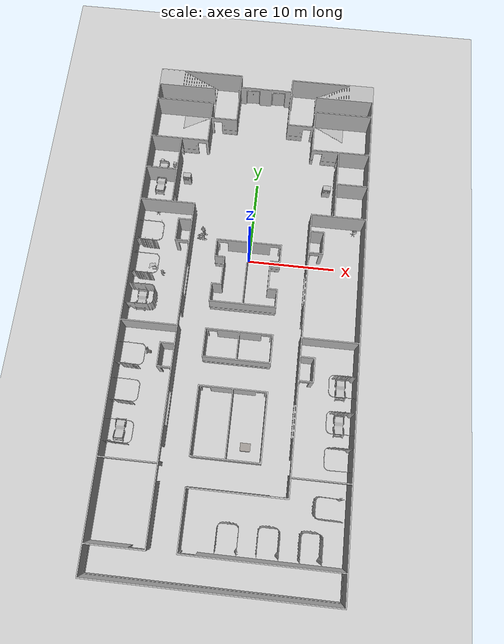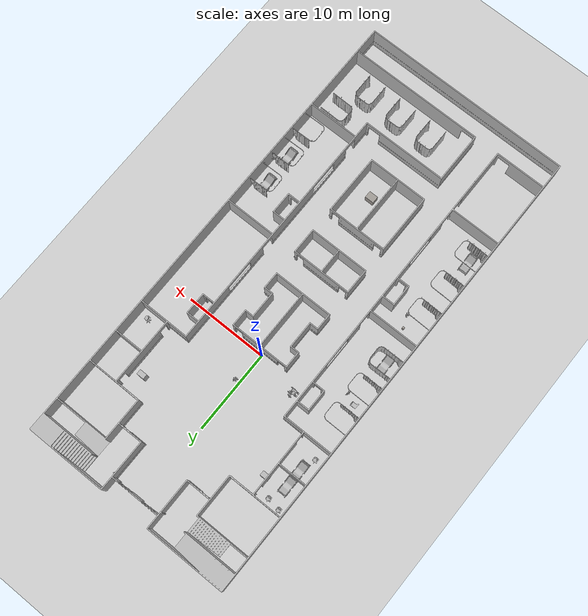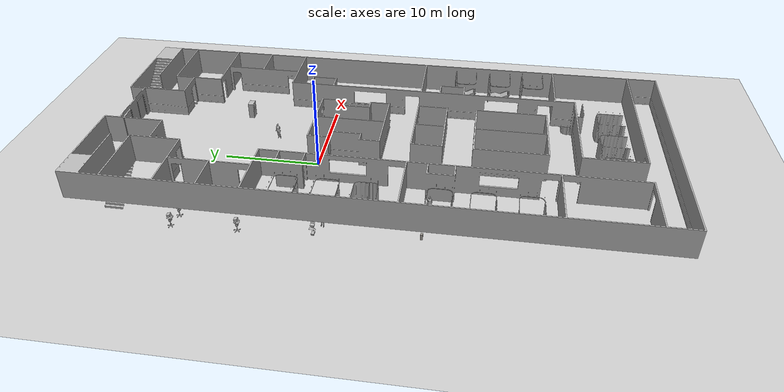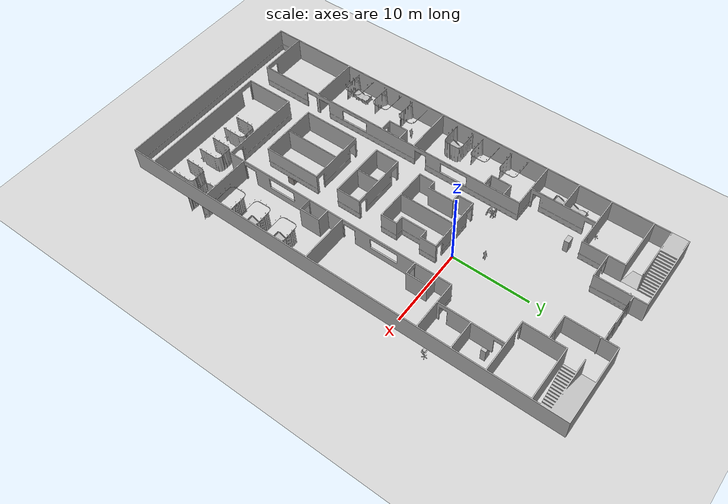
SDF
<sdf version="1.6">
 <world name="world">
  <include><uri>model://sun</uri></include>
  <include><uri>model://ground_plane</uri><pose>0 0 -0.1 0 -0 0</pose></include>
  <model name="aws_robomaker_hospital_curtain_closed_01_4">
   <include>
    <uri>model://aws_robomaker_hospital_curtain_closed_01</uri>
    <static>true</static>
    <pose>10.9819 -26.2149 0 0 0 -1.58306</pose>
   </include>
  </model>
  <model name="aws_robomaker_hospital_curtain_closed_01_5">
   <include>
    <uri>model://aws_robomaker_hospital_curtain_closed_01</uri>
    <static>true</static>
    <pose>1.31506 -30.5771 0 0 -0 3.1401</pose>
   </include>
  </model>
  <model name="aws_robomaker_hospital_curtain_closed_01_6">
   <include>
    <uri>model://aws_robomaker_hospital_curtain_closed_01</uri>
    <static>true</static>
    <pose>5.49659 -30.5364 0 0 -0 3.1401</pose>
   </include>
  </model>
  <model name="aws_robomaker_hospital_curtain_closed_01_7">
   <include>
    <uri>model://aws_robomaker_hospital_curtain_closed_01</uri>
    <static>true</static>
    <pose>9.80048 -30.5918 0 0 -0 3.1401</pose>
   </include>
  </model>
  <model name="XRayMachine_1">
   <include><uri>model://XRayMachine</uri><static>true</static><pose>1.79424 -21.3329 0 0 -0 0</pose></include>
  </model>
  <model name="BloodPressureMonitor_1">
   <include>
    <uri>model://BloodPressureMonitor</uri>
    <static>true</static>
    <pose>-9.96258 -11.9361 0 0 -0 0</pose>
   </include>
  </model>
  <model name="BMWCart_1">
   <include><uri>model://BMWCart</uri><static>true</static><pose>-10.931 -1.9483 0 0 -0 0</pose></include>
  </model>
  <model name="Scrubs_7">
   <include><uri>model://Scrubs</uri><static>true</static><pose>-9.75875 -2.67552 0 0 -0 0</pose></include>
  </model>
  <model name="BPCart_1">
   <include>
    <uri>model://BPCart</uri>
    <static>true</static>
    <pose>-10.1788 11.173 0.003446 1e-06 -0 0.003096</pose>
   </include>
  </model>
  <model name="BPCart_2">
   <include><uri>model://BPCart</uri><static>true</static><pose>12.0072 4.64765 0 0 -0 0</pose></include>
  </model>
  <model name="BPCart_3">
   <include><uri>model://BPCart</uri><static>true</static><pose>-11.7236 11.4294 0 0 -0 0</pose></include>
  </model>
  <model name="BPCart_4">
   <include>
    <uri>model://BPCart</uri>
    <static>true</static>
    <pose>-11.4703 5.05999 0.003446 1e-06 -0 0.003096</pose>
   </include>
  </model>
  <model name="VendingMachine_1">
   <include>
    <uri>model://VendingMachine</uri>
    <static>true</static>
    <pose>-8.45694 9.63064 0 0 -0 0</pose>
   </include>
  </model>
  <model name="VendingMachine_2">
   <include>
    <uri>model://VendingMachine</uri>
    <static>true</static>
    <pose>8.35378 9.64852 -3e-06 -6e-06 0 0</pose>
   </include>
  </model>
  <model name="floor_1_aws_robomaker_hospital_floor_01_walls_1">
   <include>
    <uri>model://aws_robomaker_hospital_floor_01_walls</uri>
    <static>true</static>
    <pose>-0.013823 -0.013783 3.0 0 -0 0</pose>
   </include>
  </model>
  <model name="floor_1_aws_robomaker_hospital_elevator_01_portal_1">
   <include>
    <uri>model://aws_robomaker_hospital_elevator_01_portal</uri>
    <static>true</static>
    <pose>-1.50654 19.4813 3.19 0 -0 0</pose>
   </include>
  </model>
  <model name="floor_1_aws_robomaker_hospital_elevator_01_portal_2">
   <include>
    <uri>model://aws_robomaker_hospital_elevator_01_portal</uri>
    <static>true</static>
    <pose>1.51134 19.487 3.19 0 -0 0</pose>
   </include>
  </model>
  <model name="floor_1_aws_robomaker_hospital_elevator_01_door_1">
   <include>
    <uri>model://aws_robomaker_hospital_elevator_01_door</uri>
    <static>true</static>
    <pose>-1.51 19.35 3.19 0 -0 0</pose>
   </include>
  </model>
  <model name="floor_1_aws_robomaker_hospital_elevator_01_door_2">
   <include>
    <uri>model://aws_robomaker_hospital_elevator_01_door</uri>
    <static>true</static>
    <pose>1.52843 19.3627 3.19 0 -0 0</pose>
   </include>
  </model>
  <model name="floor_1_aws_robomaker_hospital_curtain_half_open_01_1">
   <include>
    <uri>model://aws_robomaker_hospital_curtain_half_open_01</uri>
    <static>true</static>
    <pose>-11.0216 -13.8069 3.0 0 -0 1.55358</pose>
   </include>
  </model>
  <model name="floor_1_aws_robomaker_hospital_curtain_closed_01_1">
   <include>
    <uri>model://aws_robomaker_hospital_curtain_closed_01</uri>
    <static>true</static>
    <pose>-11.022 -7.27757 3.0 0 -0 1.57907</pose>
   </include>
  </model>
  <model name="floor_1_aws_robomaker_hospital_curtain_half_open_01_2">
   <include>
    <uri>model://aws_robomaker_hospital_curtain_half_open_01</uri>
    <static>true</static>
    <pose>11.1417 -21.4039 3.0 0 0 -1.55117</pose>
   </include>
  </model>
  <model name="floor_1_aws_robomaker_hospital_curtain_half_open_01_3">
   <include>
    <uri>model://aws_robomaker_hospital_curtain_half_open_01</uri>
    <static>true</static>
    <pose>11.1068 -17.8472 3.0 0 0 -1.55117</pose>
   </include>
  </model>
  <model name="floor_1_aws_robomaker_hospital_curtain_half_open_01_4">
   <include>
    <uri>model://aws_robomaker_hospital_curtain_half_open_01</uri>
    <static>true</static>
    <pose>11.1374 -14.1551 3.0 0 0 -1.55117</pose>
   </include>
  </model>
  <model name="floor_1_aws_robomaker_hospital_curtain_half_open_01_5">
   <include>
    <uri>model://aws_robomaker_hospital_curtain_half_open_01</uri>
    <static>true</static>
    <pose>-11.0332 -17.61 3.0 0 -0 1.55358</pose>
   </include>
  </model>
  <model name="floor_1_aws_robomaker_hospital_curtain_half_open_01_6">
   <include>
    <uri>model://aws_robomaker_hospital_curtain_half_open_01</uri>
    <static>true</static>
    <pose>-11.0086 -21.7566 3.0 0 -0 1.55358</pose>
   </include>
  </model>
  <model name="floor_1_CGMClassic_1">
   <include>
    <uri>model://CGMClassic</uri>
    <static>true</static>
    <pose>11.1777 -18.4129 3.0 0 0 -3.13719</pose>
   </include>
  </model>
  <model name="floor_1_CGMClassic_2">
   <include>
    <uri>model://CGMClassic</uri>
    <static>true</static>
    <pose>11.1179 -14.6493 3.0 0 0 -3.13599</pose>
   </include>
  </model>
  <model name="floor_1_Scrubs_1">
   <include>
    <uri>model://Scrubs</uri>
    <static>true</static>
    <pose>-9.61916 -12.5112 3.0 0 0 -3.12353</pose>
   </include>
  </model>
  <model name="floor_1_Scrubs_2">
   <include>
    <uri>model://Scrubs</uri>
    <static>true</static>
    <pose>0.054597 4.05849 3.0 0 -0 3.12413</pose>
   </include>
  </model>
  <model name="floor_1_PatientWheelChair_1">
   <include>
    <uri>model://PatientWheelChair</uri>
    <static>true</static>
    <pose>-5.46091 1.23577 3.0 0 0 -1.54828</pose>
   </include>
  </model>
  <model name="floor_1_Scrubs_3">
   <include>
    <uri>model://Scrubs</uri>
    <static>true</static>
    <pose>-5.38513 1.82526 3.0 0 0 -1.63757</pose>
   </include>
  </model>
  <model name="floor_1_CGMClassic_3">
   <include>
    <uri>model://CGMClassic</uri>
    <static>true</static>
    <pose>-11.2304 -21.1134 3.0 0 0 -3.11834</pose>
   </include>
  </model>
  <model name="floor_1_CGMClassic_4">
   <include>
    <uri>model://CGMClassic</uri>
    <static>true</static>
    <pose>-11.0878 -7.00992 3.0 0 -0 3.1351</pose>
   </include>
  </model>
  <model name="floor_1_CGMClassic_5">
   <include>
    <uri>model://CGMClassic</uri>
    <static>true</static>
    <pose>-11.0106 8.9505 2.991797 -0.035019 -0.000392 3.13388</pose>
   </include>
  </model>
  <model name="floor_1_CGMClassic_6">
   <include>
    <uri>model://CGMClassic</uri>
    <static>true</static>
    <pose>-11.025 7.10335 3.0 -0.035021 1.8e-05 -3.13762</pose>
   </include>
  </model>
  <model name="floor_1_aws_robomaker_hospital_curtain_half_open_01_7">
   <include>
    <uri>model://aws_robomaker_hospital_curtain_half_open_01</uri>
    <static>true</static>
    <pose>-11.0426 0.066126 3.0 0 -0 1.56614</pose>
   </include>
  </model>
  <model name="floor_1_aws_robomaker_hospital_curtain_half_open_01_8">
   <include>
    <uri>model://aws_robomaker_hospital_curtain_half_open_01</uri>
    <static>true</static>
    <pose>-11.0309 -3.75145 3.0 0 -0 1.56614</pose>
   </include>
  </model>
 </world>
</sdf>
